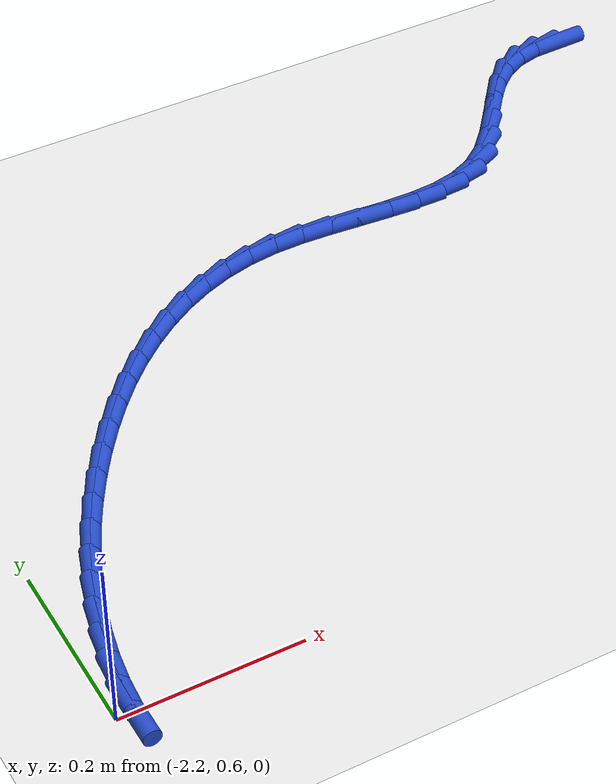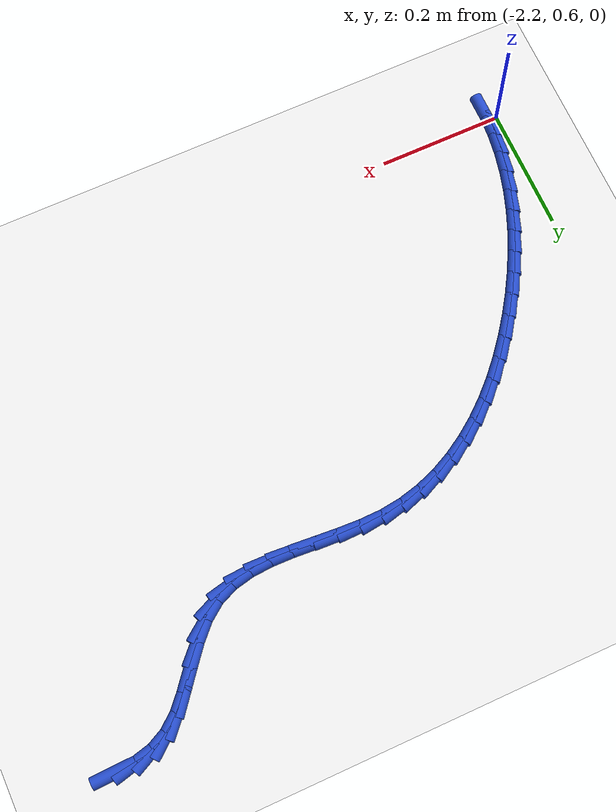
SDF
<sdf version="1.6">
 <world name="default">
  <model name="ground_plane">
   <static>1</static>
   <link name="link">
    <collision name="collision">
     <geometry><plane><normal>0 0 1</normal><size>100 100</size></plane></geometry>
     <surface><friction><ode><mu>100</mu><mu2>50</mu2></ode></friction></surface>
    </collision>
    <visual name="visual">
     <cast_shadows>0</cast_shadows>
     <geometry><plane><normal>0 0 1</normal><size>100 100</size></plane></geometry>
     <material>
      <script><uri>file://media/materials/scripts/gazebo.material</uri><name>Gazebo/WhiteGlow</name></script>
     </material>
    </visual>
   </link>
  </model>
  <model name="line">
   <link name="link_58">
    <pose>-1.25751436729596 1.3055286522798564 0.01 0 1.57 0.030949908836466963</pose>
    <collision name="collision">
     <geometry><cylinder><radius>0.01</radius><length>0.08</length></cylinder></geometry>
    </collision>
    <visual name="visual">
     <material>
      <script><name>Gazebo/Blue</name><uri>file://media/materials/scripts/gazebo.material</uri></script>
     </material>
     <geometry><cylinder><radius>0.01</radius><length>0.08</length></cylinder></geometry>
    </visual>
   </link>
   <link name="link_59">
    <pose>-1.2869086103932803 1.3046186125423849 0.01 0 1.57 0.23396297029799276</pose>
    <collision name="collision">
     <geometry><cylinder><radius>0.01</radius><length>0.08</length></cylinder></geometry>
    </collision>
    <visual name="visual">
     <material>
      <script><name>Gazebo/Blue</name><uri>file://media/materials/scripts/gazebo.material</uri></script>
     </material>
     <geometry><cylinder><radius>0.01</radius><length>0.08</length></cylinder></geometry>
    </visual>
   </link>
   <link name="link_60">
    <pose>-1.31465790285335 1.2980051930602379 0.01 0 1.57 0.4637436852306395</pose>
    <collision name="collision">
     <geometry><cylinder><radius>0.01</radius><length>0.08</length></cylinder></geometry>
    </collision>
    <visual name="visual">
     <material>
      <script><name>Gazebo/Blue</name><uri>file://media/materials/scripts/gazebo.material</uri></script>
     </material>
     <geometry><cylinder><radius>0.01</radius><length>0.08</length></cylinder></geometry>
    </visual>
   </link>
   <link name="link_61">
    <pose>-1.3405400854304812 1.285060993294185 0.01 0 1.57 0.6919482767564125</pose>
    <collision name="collision">
     <geometry><cylinder><radius>0.01</radius><length>0.08</length></cylinder></geometry>
    </collision>
    <visual name="visual">
     <material>
      <script><name>Gazebo/Blue</name><uri>file://media/materials/scripts/gazebo.material</uri></script>
     </material>
     <geometry><cylinder><radius>0.01</radius><length>0.08</length></cylinder></geometry>
    </visual>
   </link>
   <link name="link_62">
    <pose>-1.364384814122442 1.2653028507944972 0.01 0 1.57 0.8456184677379267</pose>
    <collision name="collision">
     <geometry><cylinder><radius>0.01</radius><length>0.08</length></cylinder></geometry>
    </collision>
    <visual name="visual">
     <material>
      <script><name>Gazebo/Blue</name><uri>file://media/materials/scripts/gazebo.material</uri></script>
     </material>
     <geometry><cylinder><radius>0.01</radius><length>0.08</length></cylinder></geometry>
    </visual>
   </link>
   <link name="link_63">
    <pose>-1.3866970454421277 1.2401274371069797 0.01 0 1.57 0.9081050745069981</pose>
    <collision name="collision">
     <geometry><cylinder><radius>0.01</radius><length>0.08</length></cylinder></geometry>
    </collision>
    <visual name="visual">
     <material>
      <script><name>Gazebo/Blue</name><uri>file://media/materials/scripts/gazebo.material</uri></script>
     </material>
     <geometry><cylinder><radius>0.01</radius><length>0.08</length></cylinder></geometry>
    </visual>
   </link>
   <link name="link_64">
    <pose>-1.4084547564450534 1.21224817102802 0.01 0 1.57 0.8978789376927718</pose>
    <collision name="collision">
     <geometry><cylinder><radius>0.01</radius><length>0.08</length></cylinder></geometry>
    </collision>
    <visual name="visual">
     <material>
      <script><name>Gazebo/Blue</name><uri>file://media/materials/scripts/gazebo.material</uri></script>
     </material>
     <geometry><cylinder><radius>0.01</radius><length>0.08</length></cylinder></geometry>
    </visual>
   </link>
   <link name="link_65">
    <pose>-1.4306456691011544 1.1844055982715758 0.01 0 1.57 0.8152492349469489</pose>
    <collision name="collision">
     <geometry><cylinder><radius>0.01</radius><length>0.08</length></cylinder></geometry>
    </collision>
    <visual name="visual">
     <material>
      <script><name>Gazebo/Blue</name><uri>file://media/materials/scripts/gazebo.material</uri></script>
     </material>
     <geometry><cylinder><radius>0.01</radius><length>0.08</length></cylinder></geometry>
    </visual>
   </link>
   <link name="link_66">
    <pose>-1.4542575053803661 1.159340264551606 0.01 0 1.57 0.6445946274945872</pose>
    <collision name="collision">
     <geometry><cylinder><radius>0.01</radius><length>0.08</length></cylinder></geometry>
    </collision>
    <visual name="visual">
     <material>
      <script><name>Gazebo/Blue</name><uri>file://media/materials/scripts/gazebo.material</uri></script>
     </material>
     <geometry><cylinder><radius>0.01</radius><length>0.08</length></cylinder></geometry>
    </visual>
   </link>
   <link name="link_67">
    <pose>-1.480274461597035 1.139783057714631 0.01 0 1.57 0.41050073762384276</pose>
    <collision name="collision">
     <geometry><cylinder><radius>0.01</radius><length>0.08</length></cylinder></geometry>
    </collision>
    <visual name="visual">
     <material>
      <script><name>Gazebo/Blue</name><uri>file://media/materials/scripts/gazebo.material</uri></script>
     </material>
     <geometry><cylinder><radius>0.01</radius><length>0.08</length></cylinder></geometry>
    </visual>
   </link>
   <link name="link_68">
    <pose>-1.5092144609077178 1.1271875983773147 0.01 0 1.57 0.21052976203073154</pose>
    <collision name="collision">
     <geometry><cylinder><radius>0.01</radius><length>0.08</length></cylinder></geometry>
    </collision>
    <visual name="visual">
     <material>
      <script><name>Gazebo/Blue</name><uri>file://media/materials/scripts/gazebo.material</uri></script>
     </material>
     <geometry><cylinder><radius>0.01</radius><length>0.08</length></cylinder></geometry>
    </visual>
   </link>
   <link name="link_69">
    <pose>-1.5406676934555041 1.1204661578284247 0.01 0 1.57 0.06674664311860688</pose>
    <collision name="collision">
     <geometry><cylinder><radius>0.01</radius><length>0.08</length></cylinder></geometry>
    </collision>
    <visual name="visual">
     <material>
      <script><name>Gazebo/Blue</name><uri>file://media/materials/scripts/gazebo.material</uri></script>
     </material>
     <geometry><cylinder><radius>0.01</radius><length>0.08</length></cylinder></geometry>
    </visual>
   </link>
   <link name="link_70">
    <pose>-1.574114599365697 1.118230367916409 0.01 0 1.57 -0.02466474017385754</pose>
    <collision name="collision">
     <geometry><cylinder><radius>0.01</radius><length>0.08</length></cylinder></geometry>
    </collision>
    <visual name="visual">
     <material>
      <script><name>Gazebo/Blue</name><uri>file://media/materials/scripts/gazebo.material</uri></script>
     </material>
     <geometry><cylinder><radius>0.01</radius><length>0.08</length></cylinder></geometry>
    </visual>
   </link>
   <link name="link_71">
    <pose>-1.6090356187635986 1.1190918604897155 0.01 0 1.57 -0.07152560560320889</pose>
    <collision name="collision">
     <geometry><cylinder><radius>0.01</radius><length>0.08</length></cylinder></geometry>
    </collision>
    <visual name="visual">
     <material>
      <script><name>Gazebo/Blue</name><uri>file://media/materials/scripts/gazebo.material</uri></script>
     </material>
     <geometry><cylinder><radius>0.01</radius><length>0.08</length></cylinder></geometry>
    </visual>
   </link>
   <link name="link_72">
    <pose>-1.6449111917745138 1.121662267396793 0.01 0 1.57 -0.07944981194883555</pose>
    <collision name="collision">
     <geometry><cylinder><radius>0.01</radius><length>0.08</length></cylinder></geometry>
    </collision>
    <visual name="visual">
     <material>
      <script><name>Gazebo/Blue</name><uri>file://media/materials/scripts/gazebo.material</uri></script>
     </material>
     <geometry><cylinder><radius>0.01</radius><length>0.08</length></cylinder></geometry>
    </visual>
   </link>
   <link name="link_73">
    <pose>-1.681221758523744 1.1245532204860886 0.01 0 1.57 -0.05028416706044684</pose>
    <collision name="collision">
     <geometry><cylinder><radius>0.01</radius><length>0.08</length></cylinder></geometry>
    </collision>
    <visual name="visual">
     <material>
      <script><name>Gazebo/Blue</name><uri>file://media/materials/scripts/gazebo.material</uri></script>
     </material>
     <geometry><cylinder><radius>0.01</radius><length>0.08</length></cylinder></geometry>
    </visual>
   </link>
   <link name="link_74">
    <pose>-1.7174477591365935 1.1263763516060512 0.01 0 1.57 0.017769765742580667</pose>
    <collision name="collision">
     <geometry><cylinder><radius>0.01</radius><length>0.08</length></cylinder></geometry>
    </collision>
    <visual name="visual">
     <material>
      <script><name>Gazebo/Blue</name><uri>file://media/materials/scripts/gazebo.material</uri></script>
     </material>
     <geometry><cylinder><radius>0.01</radius><length>0.08</length></cylinder></geometry>
    </visual>
   </link>
   <link name="link_75">
    <pose>-1.7530696337383647 1.125743292605128 0.01 0 1.57 0.1236331047392959</pose>
    <collision name="collision">
     <geometry><cylinder><radius>0.01</radius><length>0.08</length></cylinder></geometry>
    </collision>
    <visual name="visual">
     <material>
      <script><name>Gazebo/Blue</name><uri>file://media/materials/scripts/gazebo.material</uri></script>
     </material>
     <geometry><cylinder><radius>0.01</radius><length>0.08</length></cylinder></geometry>
    </visual>
   </link>
   <link name="link_76">
    <pose>-1.7876226589201585 1.121449495394555 0.01 0 1.57 0.23743610870200488</pose>
    <collision name="collision">
     <geometry><cylinder><radius>0.01</radius><length>0.08</length></cylinder></geometry>
    </collision>
    <visual name="visual">
     <material>
      <script><name>Gazebo/Blue</name><uri>file://media/materials/scripts/gazebo.material</uri></script>
     </material>
     <geometry><cylinder><radius>0.01</radius><length>0.08</length></cylinder></geometry>
    </visual>
   </link>
   <link name="link_77">
    <pose>-1.8209671794406903 1.1133800891671355 0.01 0 1.57 0.3455067567355999</pose>
    <collision name="collision">
     <geometry><cylinder><radius>0.01</radius><length>0.08</length></cylinder></geometry>
    </collision>
    <visual name="visual">
     <material>
      <script><name>Gazebo/Blue</name><uri>file://media/materials/scripts/gazebo.material</uri></script>
     </material>
     <geometry><cylinder><radius>0.01</radius><length>0.08</length></cylinder></geometry>
    </visual>
   </link>
   <link name="link_78">
    <pose>-1.85308286913078 1.1018202120733536 0.01 0 1.57 0.44616504954066794</pose>
    <collision name="collision">
     <geometry><cylinder><radius>0.01</radius><length>0.08</length></cylinder></geometry>
    </collision>
    <visual name="visual">
     <material>
      <script><name>Gazebo/Blue</name><uri>file://media/materials/scripts/gazebo.material</uri></script>
     </material>
     <geometry><cylinder><radius>0.01</radius><length>0.08</length></cylinder></geometry>
    </visual>
   </link>
   <link name="link_79">
    <pose>-1.883949584126317 1.0870556133776446 0.01 0 1.57 0.5385545174652862</pose>
    <collision name="collision">
     <geometry><cylinder><radius>0.01</radius><length>0.08</length></cylinder></geometry>
    </collision>
    <visual name="visual">
     <material>
      <script><name>Gazebo/Blue</name><uri>file://media/materials/scripts/gazebo.material</uri></script>
     </material>
     <geometry><cylinder><radius>0.01</radius><length>0.08</length></cylinder></geometry>
    </visual>
   </link>
   <link name="link_80">
    <pose>-1.913547180563188 1.0693720423444415 0.01 0 1.57 0.6225043812991085</pose>
    <collision name="collision">
     <geometry><cylinder><radius>0.01</radius><length>0.08</length></cylinder></geometry>
    </collision>
    <visual name="visual">
     <material>
      <script><name>Gazebo/Blue</name><uri>file://media/materials/scripts/gazebo.material</uri></script>
     </material>
     <geometry><cylinder><radius>0.01</radius><length>0.08</length></cylinder></geometry>
    </visual>
   </link>
   <link name="link_81">
    <pose>-1.9418555145772842 1.0490552482381794 0.01 0 1.57 0.6983376620358888</pose>
    <collision name="collision">
     <geometry><cylinder><radius>0.01</radius><length>0.08</length></cylinder></geometry>
    </collision>
    <visual name="visual">
     <material>
      <script><name>Gazebo/Blue</name><uri>file://media/materials/scripts/gazebo.material</uri></script>
     </material>
     <geometry><cylinder><radius>0.01</radius><length>0.08</length></cylinder></geometry>
    </visual>
   </link>
   <link name="link_82">
    <pose>-1.9688544423044934 1.0263909803232922 0.01 0 1.57 0.7666806712158291</pose>
    <collision name="collision">
     <geometry><cylinder><radius>0.01</radius><length>0.08</length></cylinder></geometry>
    </collision>
    <visual name="visual">
     <material>
      <script><name>Gazebo/Blue</name><uri>file://media/materials/scripts/gazebo.material</uri></script>
     </material>
     <geometry><cylinder><radius>0.01</radius><length>0.08</length></cylinder></geometry>
    </visual>
   </link>
   <link name="link_83">
    <pose>-1.9945238198807032 1.0016649878642143 0.01 0 1.57 0.8283118495379754</pose>
    <collision name="collision">
     <geometry><cylinder><radius>0.01</radius><length>0.08</length></cylinder></geometry>
    </collision>
    <visual name="visual">
     <material>
      <script><name>Gazebo/Blue</name><uri>file://media/materials/scripts/gazebo.material</uri></script>
     </material>
     <geometry><cylinder><radius>0.01</radius><length>0.08</length></cylinder></geometry>
    </visual>
   </link>
   <link name="link_84">
    <pose>-2.0188435034418033 0.97516302012538 0.01 0 1.57 0.8840588545827975</pose>
    <collision name="collision">
     <geometry><cylinder><radius>0.01</radius><length>0.08</length></cylinder></geometry>
    </collision>
    <visual name="visual">
     <material>
      <script><name>Gazebo/Blue</name><uri>file://media/materials/scripts/gazebo.material</uri></script>
     </material>
     <geometry><cylinder><radius>0.01</radius><length>0.08</length></cylinder></geometry>
    </visual>
   </link>
   <link name="link_85">
    <pose>-2.041793349123683 0.9471708263712237 0.01 0 1.57 0.9347375421170535</pose>
    <collision name="collision">
     <geometry><cylinder><radius>0.01</radius><length>0.08</length></cylinder></geometry>
    </collision>
    <visual name="visual">
     <material>
      <script><name>Gazebo/Blue</name><uri>file://media/materials/scripts/gazebo.material</uri></script>
     </material>
     <geometry><cylinder><radius>0.01</radius><length>0.08</length></cylinder></geometry>
    </visual>
   </link>
   <link name="link_86">
    <pose>-2.06335321306223 0.9179741558661796 0.01 0 1.57 0.9813388507996388</pose>
    <collision name="collision">
     <geometry><cylinder><radius>0.01</radius><length>0.08</length></cylinder></geometry>
    </collision>
    <visual name="visual">
     <material>
      <script><name>Gazebo/Blue</name><uri>file://media/materials/scripts/gazebo.material</uri></script>
     </material>
     <geometry><cylinder><radius>0.01</radius><length>0.08</length></cylinder></geometry>
    </visual>
   </link>
   <link name="link_87">
    <pose>-2.083498617908051 0.8878510954748712 0.01 0 1.57 1.0273087610731646</pose>
    <collision name="collision">
     <geometry><cylinder><radius>0.01</radius><length>0.08</length></cylinder></geometry>
    </collision>
    <visual name="visual">
     <material>
      <script><name>Gazebo/Blue</name><uri>file://media/materials/scripts/gazebo.material</uri></script>
     </material>
     <geometry><cylinder><radius>0.01</radius><length>0.08</length></cylinder></geometry>
    </visual>
   </link>
   <link name="link_88">
    <pose>-2.102149476674272 0.8569814039846625 0.01 0 1.57 1.0750448681291274</pose>
    <collision name="collision">
     <geometry><cylinder><radius>0.01</radius><length>0.08</length></cylinder></geometry>
    </collision>
    <visual name="visual">
     <material>
      <script><name>Gazebo/Blue</name><uri>file://media/materials/scripts/gazebo.material</uri></script>
     </material>
     <geometry><cylinder><radius>0.01</radius><length>0.08</length></cylinder></geometry>
    </visual>
   </link>
   <link name="link_89">
    <pose>-2.1191871731991134 0.8254767135081451 0.01 0 1.57 1.1250281230968686</pose>
    <collision name="collision">
     <geometry><cylinder><radius>0.01</radius><length>0.08</length></cylinder></geometry>
    </collision>
    <visual name="visual">
     <material>
      <script><name>Gazebo/Blue</name><uri>file://media/materials/scripts/gazebo.material</uri></script>
     </material>
     <geometry><cylinder><radius>0.01</radius><length>0.08</length></cylinder></geometry>
    </visual>
   </link>
   <link name="link_90">
    <pose>-2.13449231877352 0.7934472901520923 0.01 0 1.57 1.177715656877626</pose>
    <collision name="collision">
     <geometry><cylinder><radius>0.01</radius><length>0.08</length></cylinder></geometry>
    </collision>
    <visual name="visual">
     <material>
      <script><name>Gazebo/Blue</name><uri>file://media/materials/scripts/gazebo.material</uri></script>
     </material>
     <geometry><cylinder><radius>0.01</radius><length>0.08</length></cylinder></geometry>
    </visual>
   </link>
   <link name="link_91">
    <pose>-2.147945524688438 0.7610034000232798 0.01 0 1.57 1.2335762928506382</pose>
    <collision name="collision">
     <geometry><cylinder><radius>0.01</radius><length>0.08</length></cylinder></geometry>
    </collision>
    <visual name="visual">
     <material>
      <script><name>Gazebo/Blue</name><uri>file://media/materials/scripts/gazebo.material</uri></script>
     </material>
     <geometry><cylinder><radius>0.01</radius><length>0.08</length></cylinder></geometry>
    </visual>
   </link>
   <link name="link_92">
    <pose>-2.1594274022348117 0.728255309228481 0.01 0 1.57 1.2930818368449162</pose>
    <collision name="collision">
     <geometry><cylinder><radius>0.01</radius><length>0.08</length></cylinder></geometry>
    </collision>
    <visual name="visual">
     <material>
      <script><name>Gazebo/Blue</name><uri>file://media/materials/scripts/gazebo.material</uri></script>
     </material>
     <geometry><cylinder><radius>0.01</radius><length>0.08</length></cylinder></geometry>
    </visual>
   </link>
   <link name="link_93">
    <pose>-2.168818562703585 0.6953132838744714 0.01 0 1.57 1.35669065413487</pose>
    <collision name="collision">
     <geometry><cylinder><radius>0.01</radius><length>0.08</length></cylinder></geometry>
    </collision>
    <visual name="visual">
     <material>
      <script><name>Gazebo/Blue</name><uri>file://media/materials/scripts/gazebo.material</uri></script>
     </material>
     <geometry><cylinder><radius>0.01</radius><length>0.08</length></cylinder></geometry>
    </visual>
   </link>
   <link name="link_94">
    <pose>-2.1759996173857035 0.6622875900680243 0.01 0 1.57 1.4248210900402323</pose>
    <collision name="collision">
     <geometry><cylinder><radius>0.01</radius><length>0.08</length></cylinder></geometry>
    </collision>
    <visual name="visual">
     <material>
      <script><name>Gazebo/Blue</name><uri>file://media/materials/scripts/gazebo.material</uri></script>
     </material>
     <geometry><cylinder><radius>0.01</radius><length>0.08</length></cylinder></geometry>
    </visual>
   </link>
   <link name="link_95">
    <pose>-2.180851177572112 0.6292884939159151 0.01 0 1.57 1.4978125629258745</pose>
    <collision name="collision">
     <geometry><cylinder><radius>0.01</radius><length>0.08</length></cylinder></geometry>
    </collision>
    <visual name="visual">
     <material>
      <script><name>Gazebo/Blue</name><uri>file://media/materials/scripts/gazebo.material</uri></script>
     </material>
     <geometry><cylinder><radius>0.01</radius><length>0.08</length></cylinder></geometry>
    </visual>
   </link>
   <link name="link_96">
    <pose>-2.183253854553756 0.5964262615249177 0.01 0 1.57 -1.5657211340013137</pose>
    <collision name="collision">
     <geometry><cylinder><radius>0.01</radius><length>0.08</length></cylinder></geometry>
    </collision>
    <visual name="visual">
     <material>
      <script><name>Gazebo/Blue</name><uri>file://media/materials/scripts/gazebo.material</uri></script>
     </material>
     <geometry><cylinder><radius>0.01</radius><length>0.08</length></cylinder></geometry>
    </visual>
   </link>
  </model>
 </world>
</sdf>
